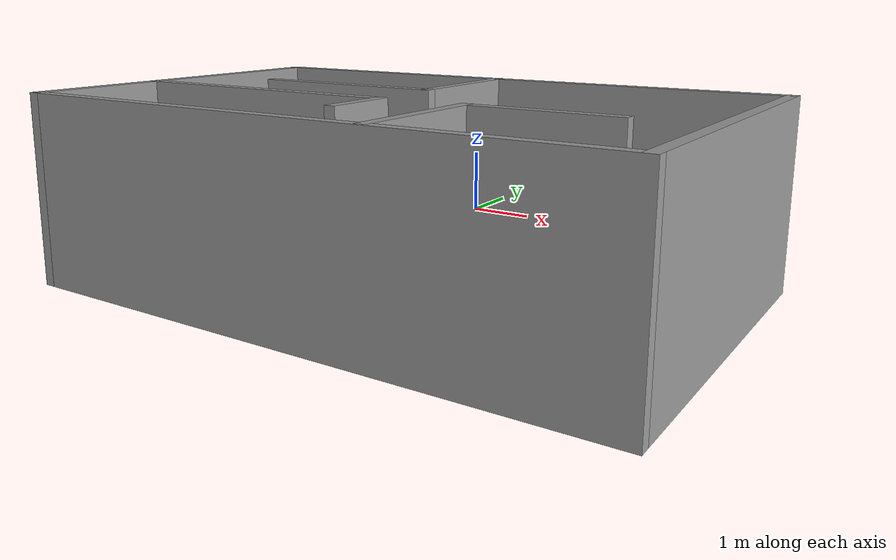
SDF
<?xml version='1.0'?>
<sdf version='1.7'>
  <model name='room_test'>
    <pose>1.534 -3.4225 0 0 -0 0</pose>
    <link name='Wall_0'>
      <collision name='Wall_0_Collision'>
        <geometry>
          <box>
            <size>8 0.15 2.5</size>
          </box>
        </geometry>
        <pose>0 0 1.25 0 -0 0</pose>
      </collision>
      <visual name='Wall_0_Visual'>
        <pose>0 0 1.25 0 -0 0</pose>
        <geometry>
          <box>
            <size>8 0.15 2.5</size>
          </box>
        </geometry>
        <material>
          <script>
            <uri>file://media/materials/scripts/gazebo.material</uri>
            <name>Gazebo/Grey</name>
          </script>
          <ambient>1 1 1 1</ambient>
        </material>
        <meta>
          <layer>0</layer>
        </meta>
      </visual>
      <pose>0 1.5025 0 0 -0 0</pose>
    </link>
    <link name='Wall_1'>
      <collision name='Wall_1_Collision'>
        <geometry>
          <box>
            <size>5 0.15 2.5</size>
          </box>
        </geometry>
        <pose>0 0 1.25 0 -0 0</pose>
      </collision>
      <visual name='Wall_1_Visual'>
        <pose>0 0 1.25 0 -0 0</pose>
        <geometry>
          <box>
            <size>5 0.15 2.5</size>
          </box>
        </geometry>
        <material>
          <script>
            <uri>file://media/materials/scripts/gazebo.material</uri>
            <name>Gazebo/Grey</name>
          </script>
          <ambient>1 1 1 1</ambient>
        </material>
        <meta>
          <layer>0</layer>
        </meta>
      </visual>
      <pose>3.925 -0.9225 0 0 -0 -1.5708</pose>
    </link>
    <link name='Wall_13'>
      <collision name='Wall_13_Collision'>
        <geometry>
          <box>
            <size>2 0.15 2.5</size>
          </box>
        </geometry>
        <pose>0 0 1.25 0 -0 0</pose>
      </collision>
      <visual name='Wall_13_Visual'>
        <pose>0 0 1.25 0 -0 0</pose>
        <geometry>
          <box>
            <size>2 0.15 2.5</size>
          </box>
        </geometry>
        <material>
          <script>
            <uri>file://media/materials/scripts/gazebo.material</uri>
            <name>Gazebo/Grey</name>
          </script>
          <ambient>1 1 1 1</ambient>
        </material>
        <meta>
          <layer>0</layer>
        </meta>
      </visual>
      <pose>1.1005 -2.3795 0 0 -0 1.5708</pose>
    </link>
    <link name='Wall_14'>
      <collision name='Wall_14_Collision'>
        <geometry>
          <box>
            <size>2 0.15 2.5</size>
          </box>
        </geometry>
        <pose>0 0 1.25 0 -0 0</pose>
      </collision>
      <visual name='Wall_14_Visual'>
        <pose>0 0 1.25 0 -0 0</pose>
        <geometry>
          <box>
            <size>2 0.15 2.5</size>
          </box>
        </geometry>
        <material>
          <script>
            <uri>file://media/materials/scripts/gazebo.material</uri>
            <name>Gazebo/Grey</name>
          </script>
          <ambient>1 1 1 1</ambient>
        </material>
        <meta>
          <layer>0</layer>
        </meta>
      </visual>
      <pose>2.0255 -1.4545 0 0 -0 0</pose>
    </link>
    <link name='Wall_16'>
      <collision name='Wall_16_Collision'>
        <geometry>
          <box>
            <size>4 0.15 2.5</size>
          </box>
        </geometry>
        <pose>0 0 1.25 0 -0 0</pose>
      </collision>
      <visual name='Wall_16_Visual'>
        <pose>0 0 1.25 0 -0 0</pose>
        <geometry>
          <box>
            <size>4 0.15 2.5</size>
          </box>
        </geometry>
        <material>
          <script>
            <uri>file://media/materials/scripts/gazebo.material</uri>
            <name>Gazebo/Grey</name>
          </script>
          <ambient>1 1 1 1</ambient>
        </material>
        <meta>
          <layer>0</layer>
        </meta>
      </visual>
      <pose>-1.977 -1.476 0 0 -0 0</pose>
    </link>
    <link name='Wall_17'>
      <collision name='Wall_17_Collision'>
        <geometry>
          <box>
            <size>1 0.15 2.5</size>
          </box>
        </geometry>
        <pose>0 0 1.25 0 -0 0</pose>
      </collision>
      <visual name='Wall_17_Visual'>
        <pose>0 0 1.25 0 -0 0</pose>
        <geometry>
          <box>
            <size>1 0.15 2.5</size>
          </box>
        </geometry>
        <material>
          <script>
            <uri>file://media/materials/scripts/gazebo.material</uri>
            <name>Gazebo/Grey</name>
          </script>
          <ambient>1 1 1 1</ambient>
        </material>
        <meta>
          <layer>0</layer>
        </meta>
      </visual>
      <pose>-0.052 -1.901 0 0 -0 -1.5708</pose>
    </link>
    <link name='Wall_2'>
      <collision name='Wall_2_Collision'>
        <geometry>
          <box>
            <size>8 0.15 2.5</size>
          </box>
        </geometry>
        <pose>0 0 1.25 0 -0 0</pose>
      </collision>
      <visual name='Wall_2_Visual'>
        <pose>0 0 1.25 0 -0 0</pose>
        <geometry>
          <box>
            <size>8 0.15 2.5</size>
          </box>
        </geometry>
        <material>
          <script>
            <uri>file://media/materials/scripts/gazebo.material</uri>
            <name>Gazebo/Grey</name>
          </script>
          <ambient>1 1 1 1</ambient>
        </material>
        <meta>
          <layer>0</layer>
        </meta>
      </visual>
      <pose>0 -3.3475 0 0 -0 3.14159</pose>
    </link>
    <link name='Wall_3'>
      <collision name='Wall_3_Collision'>
        <geometry>
          <box>
            <size>5 0.15 2.5</size>
          </box>
        </geometry>
        <pose>0 0 1.25 0 -0 0</pose>
      </collision>
      <visual name='Wall_3_Visual'>
        <pose>0 0 1.25 0 -0 0</pose>
        <geometry>
          <box>
            <size>5 0.15 2.5</size>
          </box>
        </geometry>
        <material>
          <script>
            <uri>file://media/materials/scripts/gazebo.material</uri>
            <name>Gazebo/Grey</name>
          </script>
          <ambient>1 1 1 1</ambient>
        </material>
        <meta>
          <layer>0</layer>
        </meta>
      </visual>
      <pose>-3.925 -0.9225 0 0 -0 1.5708</pose>
    </link>
    <link name='Wall_5'>
      <collision name='Wall_5_Collision'>
        <geometry>
          <box>
            <size>2 0.15 2.5</size>
          </box>
        </geometry>
        <pose>0 0 1.25 0 -0 0</pose>
      </collision>
      <visual name='Wall_5_Visual'>
        <pose>0 0 1.25 0 -0 0</pose>
        <geometry>
          <box>
            <size>2 0.15 2.5</size>
          </box>
        </geometry>
        <material>
          <script>
            <uri>file://media/materials/scripts/gazebo.material</uri>
            <name>Gazebo/Grey</name>
          </script>
          <ambient>1 1 1 1</ambient>
        </material>
        <meta>
          <layer>0</layer>
        </meta>
      </visual>
      <pose>-0.1185 0.5775 0 0 -0 -1.5708</pose>
    </link>
    <link name='Wall_6'>
      <collision name='Wall_6_Collision'>
        <geometry>
          <box>
            <size>2.75 0.15 2.5</size>
          </box>
        </geometry>
        <pose>0 0 1.25 0 -0 0</pose>
      </collision>
      <visual name='Wall_6_Visual'>
        <pose>0 0 1.25 0 -0 0</pose>
        <geometry>
          <box>
            <size>2.75 0.15 2.5</size>
          </box>
        </geometry>
        <material>
          <script>
            <uri>file://media/materials/scripts/gazebo.material</uri>
            <name>Gazebo/Grey</name>
          </script>
          <ambient>1 1 1 1</ambient>
        </material>
        <meta>
          <layer>0</layer>
        </meta>
      </visual>
      <pose>-1.4185 -0.3475 0 0 -0 3.14159</pose>
    </link>
    <static>1</static>
  </model>
</sdf>
